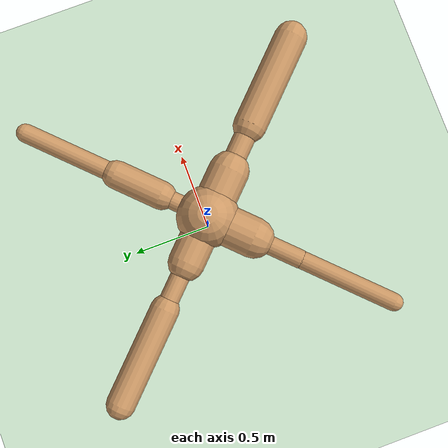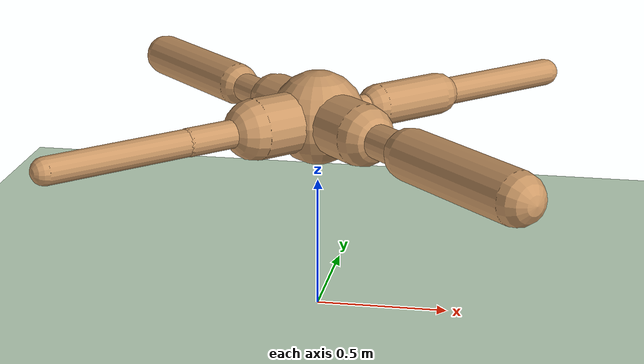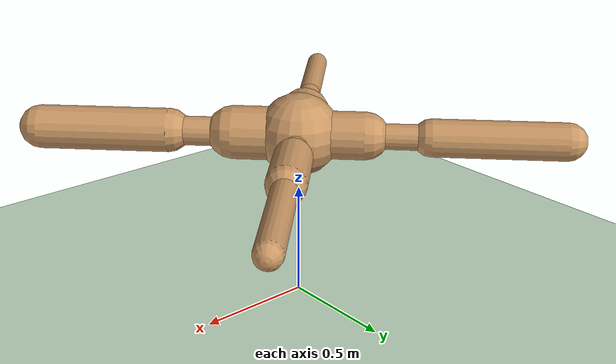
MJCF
<?xml version="1.0" encoding="utf-8"?>
<mujoco model="ant">
	<compiler angle="degree" coordinate="local" inertiafromgeom="true"></compiler>
	<option integrator="RK4" timestep="0.01"></option>
	<custom>
		<numeric data="0.0 0.0 0.55 1.0 0.0 0.0 0.0 0.0 1.0 0.0 -1.0 0.0 -1.0 0.0 1.0" name="init_qpos"></numeric>
	</custom>
	<default>
		<joint armature="1" damping="1.1885470127877202" limited="true"></joint>
		<geom conaffinity="0" condim="3" density="5.0" friction="0.8926925530146994 0.295022697033713 0.4684167196833819" margin="0.01" rgba="0.8 0.6 0.4 1"></geom>
	</default>
	<asset>
		<texture builtin="gradient" height="100" rgb1="1 1 1" rgb2="0 0 0" type="skybox" width="100"></texture>
		<texture builtin="flat" height="1278" mark="cross" markrgb="1 1 1" name="texgeom" random="0.01" rgb1="0.8 0.6 0.4" rgb2="0.8 0.6 0.4" type="cube" width="127"></texture>
		<texture builtin="checker" height="100" name="texplane" rgb1="0 0 0" rgb2="0.8 0.8 0.8" type="2d" width="100"></texture>
		<material name="MatPlane" reflectance="0.5" shininess="1" specular="1" texrepeat="60 60" texture="texplane"></material>
		<material name="geom" texture="texgeom" texuniform="true"></material>
	</asset>
	<worldbody>
		<light cutoff="100" diffuse="1 1 1" dir="-0 0 -1.3" directional="true" exponent="1" pos="0 0 1.3" specular=".1 .1 .1"></light>
		<geom conaffinity="1" condim="3" material="MatPlane" name="floor" pos="0 0 0" rgba="0.8 0.9 0.8 1" size="29.951718836622668 34.647461286236286 32.10055433723826" type="plane"></geom>
		<body name="torso" pos="0 0 0.75">
			<camera name="track" mode="trackcom" pos="0 -3 0.3" xyaxes="1 0 0 0 0 1"></camera>
			<geom name="torso_geom" pos="0 0 0" size="0.178040888522492" type="sphere"></geom>
			<joint armature="0" damping="0.0" limited="false" margin="0.01" name="root" pos="0 0 0" type="free"></joint>
			<body name="front_left_leg" pos="0 0 0">
				<geom fromto="0.0 0.0 0.0 0.2 0.2 0.0" name="aux_1_geom" size="0.05157617715584304" type="capsule"></geom>
				<body name="aux_1" pos="0.2 0.2 0">
					<joint axis="0 0 1" name="hip_1" pos="0.0 0.0 0.0" range="-30 30" type="hinge"></joint>
					<geom fromto="0.0 0.0 0.0 0.2 0.2 0.0" name="left_leg_geom" size="0.08187977278202528" type="capsule"></geom>
					<body pos="0.2 0.2 0">
						<joint axis="-1 1 0" name="ankle_1" pos="0.0 0.0 0.0" range="30 70" type="hinge"></joint>
						<geom fromto="0.0 0.0 0.0 0.4 0.4 0.0" name="left_ankle_geom" size="0.05387245795794743" type="capsule"></geom>
					</body>
				</body>
			</body>
			<body name="front_right_leg" pos="0 0 0">
				<geom fromto="0.0 0.0 0.0 -0.2 0.2 0.0" name="aux_2_geom" size="0.10423428630908882" type="capsule"></geom>
				<body name="aux_2" pos="-0.2 0.2 0">
					<joint axis="0 0 1" name="hip_2" pos="0.0 0.0 0.0" range="-30 30" type="hinge"></joint>
					<geom fromto="0.0 0.0 0.0 -0.2 0.2 0.0" name="right_leg_geom" size="0.05603987385760681" type="capsule"></geom>
					<body pos="-0.2 0.2 0">
						<joint axis="1 1 0" name="ankle_2" pos="0.0 0.0 0.0" range="-70 -30" type="hinge"></joint>
						<geom fromto="0.0 0.0 0.0 -0.4 0.4 0.0" name="right_ankle_geom" size="0.08251827644566882" type="capsule"></geom>
					</body>
				</body>
			</body>
			<body name="back_leg" pos="0 0 0">
				<geom fromto="0.0 0.0 0.0 -0.2 -0.2 0.0" name="aux_3_geom" size="0.11583498785141741" type="capsule"></geom>
				<body name="aux_3" pos="-0.2 -0.2 0">
					<joint axis="0 0 1" name="hip_3" pos="0.0 0.0 0.0" range="-30 30" type="hinge"></joint>
					<geom fromto="0.0 0.0 0.0 -0.2 -0.2 0.0" name="back_leg_geom" size="0.053210829286442086" type="capsule"></geom>
					<body pos="-0.2 -0.2 0">
						<joint axis="-1 1 0" name="ankle_3" pos="0.0 0.0 0.0" range="-70 -30" type="hinge"></joint>
						<geom fromto="0.0 0.0 0.0 -0.4 -0.4 0.0" name="third_ankle_geom" size="0.05123902890894058" type="capsule"></geom>
					</body>
				</body>
			</body>
			<body name="right_back_leg" pos="0 0 0">
				<geom fromto="0.0 0.0 0.0 0.2 -0.2 0.0" name="aux_4_geom" size="0.11658217060099953" type="capsule"></geom>
				<body name="aux_4" pos="0.2 -0.2 0">
					<joint axis="0 0 1" name="hip_4" pos="0.0 0.0 0.0" range="-30 30" type="hinge"></joint>
					<geom fromto="0.0 0.0 0.0 0.2 -0.2 0.0" name="rightback_leg_geom" size="0.06387740872869087" type="capsule"></geom>
					<body pos="0.2 -0.2 0">
						<joint axis="1 1 0" name="ankle_4" pos="0.0 0.0 0.0" range="30 70" type="hinge"></joint>
						<geom fromto="0.0 0.0 0.0 0.4 -0.4 0.0" name="fourth_ankle_geom" size="0.09596035956462397" type="capsule"></geom>
					</body>
				</body>
			</body>
		</body>
	</worldbody>
	<actuator>
		<motor ctrllimited="true" ctrlrange="-1.0 1.0" joint="hip_4" gear="150"></motor>
		<motor ctrllimited="true" ctrlrange="-1.0 1.0" joint="ankle_4" gear="150"></motor>
		<motor ctrllimited="true" ctrlrange="-1.0 1.0" joint="hip_1" gear="150"></motor>
		<motor ctrllimited="true" ctrlrange="-1.0 1.0" joint="ankle_1" gear="150"></motor>
		<motor ctrllimited="true" ctrlrange="-1.0 1.0" joint="hip_2" gear="150"></motor>
		<motor ctrllimited="true" ctrlrange="-1.0 1.0" joint="ankle_2" gear="150"></motor>
		<motor ctrllimited="true" ctrlrange="-1.0 1.0" joint="hip_3" gear="150"></motor>
		<motor ctrllimited="true" ctrlrange="-1.0 1.0" joint="ankle_3" gear="150"></motor>
	</actuator>
</mujoco>
